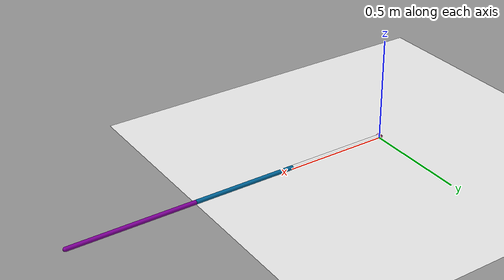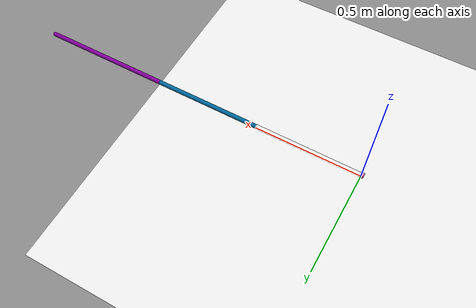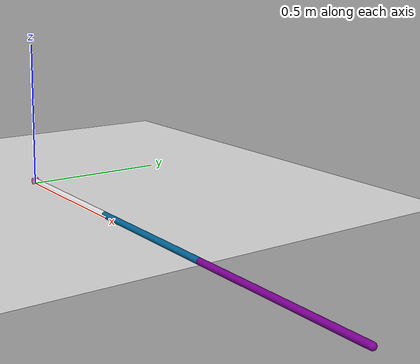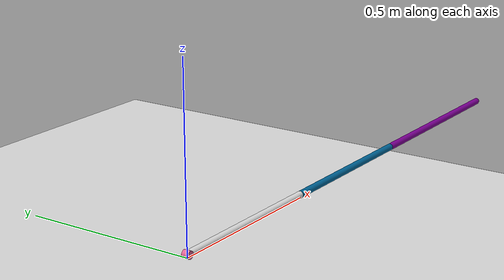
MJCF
<mujoco model="pend_3link">
	<compiler angle="degree" inertiafromgeom="true"/>
	<default>
		<joint armature="2" damping="2.0" limited="true"/>
		<geom contype="0" friction="1 0.1 0.1" rgba="0.7 0.7 0 1"/>
	</default>
	<option gravity="0 0 -9.81"  timestep="0.0005"/>
	<worldbody>
		<!-- Floor -->
		<geom conaffinity="0" contype="0" name="ground" pos="0 0 0" rgba="0.9 0.9 0.9 1" size="1 1 10" type="plane"/>

      <!-- Base -->
		<geom conaffinity="0" contype="0" fromto="0 -0.01 0.01 0 0.01 0.01" name="root" rgba="0.9 0.4 0.6 1" size=".011" type="cylinder"/>
		<!-- Arm -->
		<body name="link1" pos="0 0 .01">
			<camera name='track' mode='track' pos="0 -3 1" zaxis="0 -1 0.5"/>
			<inertial pos="0.25 0 0" mass="5" diaginertia="0.2083 0.2083 0.2083" />
			<geom fromto="0 0 0 0.5 0 0" name="link1_geom" rgba="0.9 0.9 0.9 1" size=".01" type="capsule"/>
			<joint axis="0 -1 0" limited="false" name="joint1" pos="0 0 0" range="-180.0 180.0" type="hinge"/>
			<body name="link2" pos="0.5 0 0">
				<inertial pos="0.25 0 0" mass="5" diaginertia="0.2083 0.2083 0.2083" />
         <joint axis="0 -1 0" limited="true" name="joint2" pos="0 0 0" range="-180.0 180.0" type="hinge"/>
				<geom fromto="0 0 0 0.5 0 0" name="link2_geom" rgba="0.0 0.4 0.6 1" size=".01" type="capsule"/>
				<body name="link3" pos="0.5 0 0">
          <inertial pos="0.3 0 0" mass="30" diaginertia="1.5 1.5 1.5" />
          <joint axis="0 -1 0" limited="true" name="joint3" pos="0 0 0" range="-180.0 180.0" type="hinge"/>
          <geom fromto="0 0 0 0.6 0 0" name="link3_geom" rgba="0.5 0.0 0.6 1" size=".01" type="capsule"/>
				</body>
         </body>
		</body>
	</worldbody>
	<actuator>
		<motor ctrllimited="true" ctrlrange="-3000.0 3000.0" gear="1.0" joint="joint1"/>
		<motor ctrllimited="true" ctrlrange="-3000.0 3000.0" gear="1.0" joint="joint2"/>
		<motor ctrllimited="true" ctrlrange="-3000.0 3000.0" gear="1.0" joint="joint3"/>
	</actuator>
</mujoco>
